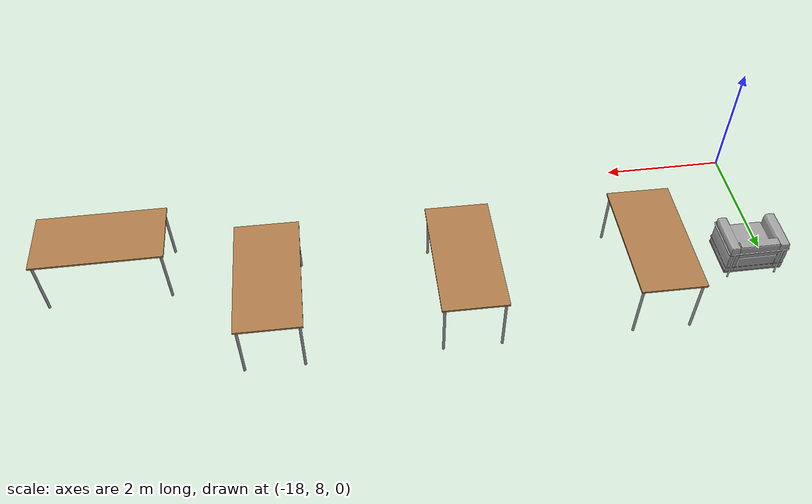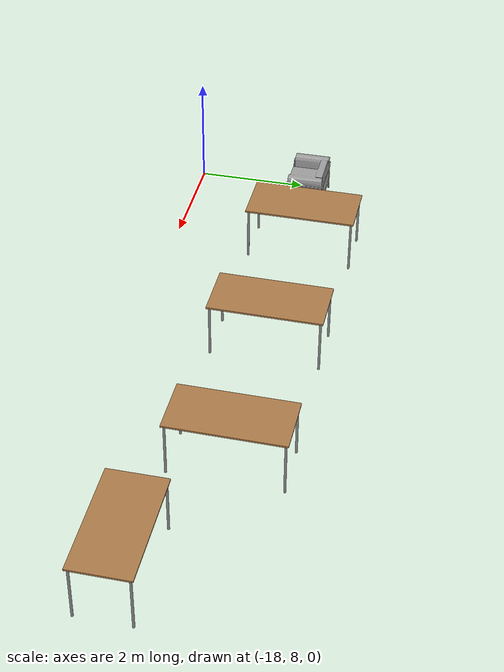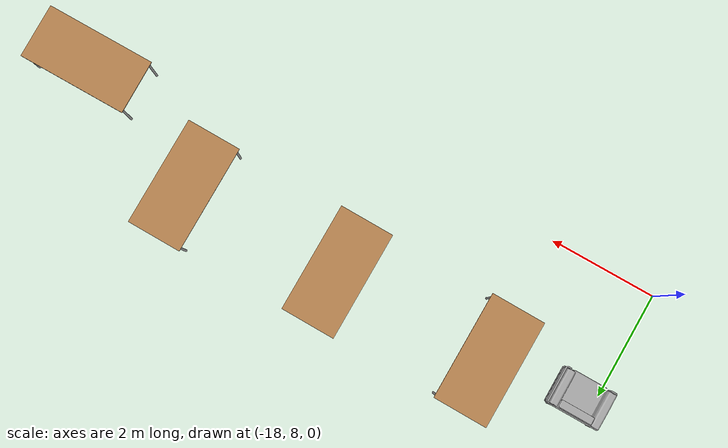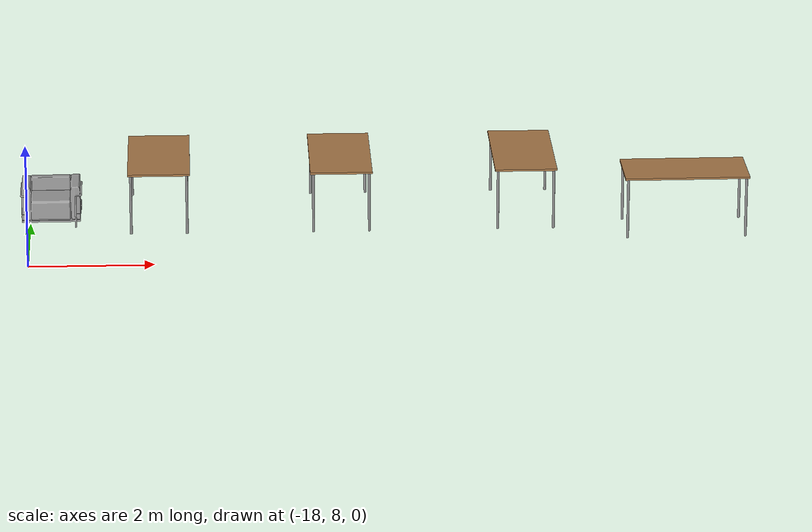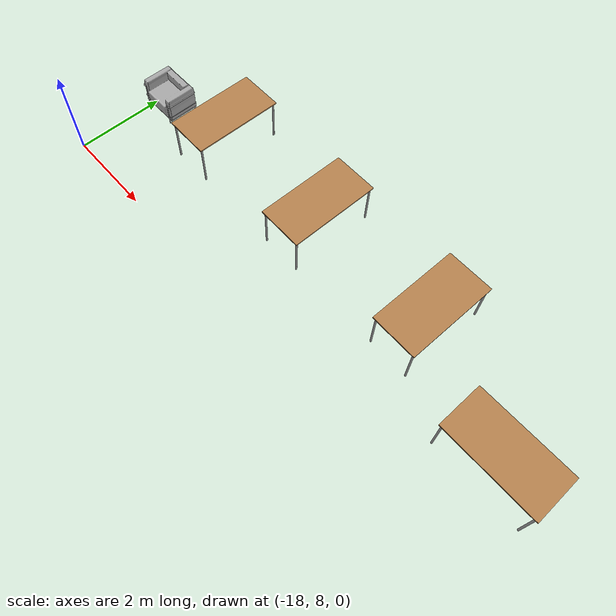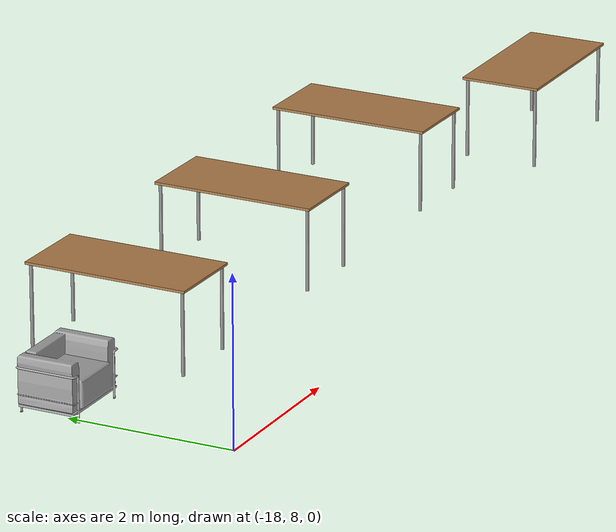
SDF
<sdf version="1.6">
 <model name="bibeg">
  <link name="link_clone_3">
   <pose>-7.46554 9.34004 0 0 -0 0</pose>
   <inertial>
    <mass>1</mass>
    <inertia><ixx>1</ixx><ixy>0</ixy><ixz>0</ixz><iyy>1</iyy><iyz>0</iyz><izz>1</izz></inertia>
   </inertial>
   <visual name="visual1">
    <pose>0 0 1 0 -0 0</pose>
    <geometry><box><size>2 1 0.03</size></box></geometry>
    <material>
     <script><uri>file://media/materials/scripts/gazebo.material</uri><name>Gazebo/Wood</name></script>
     <shader type="vertex"><normal_map>__default__</normal_map></shader>
     <ambient>1 1 1 1</ambient>
     <diffuse>1 1 1 1</diffuse>
     <specular>0.2 0.2 0.2 1</specular>
     <emissive>0 0 0 1</emissive>
    </material>
   </visual>
   <visual name="front_left_leg">
    <pose>0.95 0.45 0.5 0 -0 0</pose>
    <geometry><cylinder><radius>0.02</radius><length>1</length></cylinder></geometry>
    <material>
     <script><uri>file://media/materials/scripts/gazebo.material</uri><name>Gazebo/Grey</name></script>
     <shader type="vertex"><normal_map>__default__</normal_map></shader>
     <ambient>0.3 0.3 0.3 1</ambient>
     <diffuse>0.7 0.7 0.7 1</diffuse>
     <specular>0.01 0.01 0.01 1</specular>
     <emissive>0 0 0 1</emissive>
    </material>
   </visual>
   <visual name="front_right_leg">
    <pose>0.95 -0.45 0.5 0 -0 0</pose>
    <geometry><cylinder><radius>0.02</radius><length>1</length></cylinder></geometry>
    <material>
     <script><uri>file://media/materials/scripts/gazebo.material</uri><name>Gazebo/Grey</name></script>
     <shader type="vertex"><normal_map>__default__</normal_map></shader>
     <ambient>0.3 0.3 0.3 1</ambient>
     <diffuse>0.7 0.7 0.7 1</diffuse>
     <specular>0.01 0.01 0.01 1</specular>
     <emissive>0 0 0 1</emissive>
    </material>
   </visual>
   <visual name="back_right_leg">
    <pose>-0.95 -0.45 0.5 0 -0 0</pose>
    <geometry><cylinder><radius>0.02</radius><length>1</length></cylinder></geometry>
    <material>
     <script><uri>file://media/materials/scripts/gazebo.material</uri><name>Gazebo/Grey</name></script>
     <shader type="vertex"><normal_map>__default__</normal_map></shader>
     <ambient>0.3 0.3 0.3 1</ambient>
     <diffuse>0.7 0.7 0.7 1</diffuse>
     <specular>0.01 0.01 0.01 1</specular>
     <emissive>0 0 0 1</emissive>
    </material>
   </visual>
   <visual name="back_left_leg">
    <pose>-0.95 0.45 0.5 0 -0 0</pose>
    <geometry><cylinder><radius>0.02</radius><length>1</length></cylinder></geometry>
    <material>
     <script><uri>file://media/materials/scripts/gazebo.material</uri><name>Gazebo/Grey</name></script>
     <shader type="vertex"><normal_map>__default__</normal_map></shader>
     <ambient>0.3 0.3 0.3 1</ambient>
     <diffuse>0.7 0.7 0.7 1</diffuse>
     <specular>0.01 0.01 0.01 1</specular>
     <emissive>0 0 0 1</emissive>
    </material>
   </visual>
   <collision name="surface">
    <pose>0 0 1 0 -0 0</pose>
    <geometry><box><size>2 1 0.03</size></box></geometry>
    <surface>
     <friction>
      <ode><mu>1</mu><mu2>1</mu2><fdir1>0 0 0</fdir1><slip1>0</slip1><slip2>0</slip2></ode>
      <torsional>
       <coefficient>1</coefficient>
       <patch_radius>0</patch_radius>
       <surface_radius>0</surface_radius>
       <use_patch_radius>1</use_patch_radius>
       <ode><slip>0</slip></ode>
      </torsional>
     </friction>
     <bounce><restitution_coefficient>0</restitution_coefficient><threshold>1e+06</threshold></bounce>
     <contact>
      <collide_without_contact>0</collide_without_contact>
      <collide_without_contact_bitmask>1</collide_without_contact_bitmask>
      <collide_bitmask>1</collide_bitmask>
      <ode>
       <soft_cfm>0</soft_cfm>
       <soft_erp>0.2</soft_erp>
       <kp>1e+13</kp>
       <kd>1</kd>
       <max_vel>0.01</max_vel>
       <min_depth>0</min_depth>
      </ode>
      <bullet>
       <split_impulse>1</split_impulse>
       <split_impulse_penetration_threshold>-0.01</split_impulse_penetration_threshold>
       <soft_cfm>0</soft_cfm>
       <soft_erp>0.2</soft_erp>
       <kp>1e+13</kp>
       <kd>1</kd>
      </bullet>
     </contact>
    </surface>
   </collision>
   <collision name="front_left_leg_0">
    <pose>0.95 0.45 0.5 0 -0 0</pose>
    <geometry><cylinder><radius>0.02</radius><length>1</length></cylinder></geometry>
    <surface>
     <friction>
      <ode><mu>1</mu><mu2>1</mu2><fdir1>0 0 0</fdir1><slip1>0</slip1><slip2>0</slip2></ode>
      <torsional>
       <coefficient>1</coefficient>
       <patch_radius>0</patch_radius>
       <surface_radius>0</surface_radius>
       <use_patch_radius>1</use_patch_radius>
       <ode><slip>0</slip></ode>
      </torsional>
     </friction>
     <bounce><restitution_coefficient>0</restitution_coefficient><threshold>1e+06</threshold></bounce>
     <contact>
      <collide_without_contact>0</collide_without_contact>
      <collide_without_contact_bitmask>1</collide_without_contact_bitmask>
      <collide_bitmask>1</collide_bitmask>
      <ode>
       <soft_cfm>0</soft_cfm>
       <soft_erp>0.2</soft_erp>
       <kp>1e+13</kp>
       <kd>1</kd>
       <max_vel>0.01</max_vel>
       <min_depth>0</min_depth>
      </ode>
      <bullet>
       <split_impulse>1</split_impulse>
       <split_impulse_penetration_threshold>-0.01</split_impulse_penetration_threshold>
       <soft_cfm>0</soft_cfm>
       <soft_erp>0.2</soft_erp>
       <kp>1e+13</kp>
       <kd>1</kd>
      </bullet>
     </contact>
    </surface>
   </collision>
   <collision name="front_right_leg_0">
    <pose>0.95 -0.45 0.5 0 -0 0</pose>
    <geometry><cylinder><radius>0.02</radius><length>1</length></cylinder></geometry>
    <surface>
     <friction>
      <ode><mu>1</mu><mu2>1</mu2><fdir1>0 0 0</fdir1><slip1>0</slip1><slip2>0</slip2></ode>
      <torsional>
       <coefficient>1</coefficient>
       <patch_radius>0</patch_radius>
       <surface_radius>0</surface_radius>
       <use_patch_radius>1</use_patch_radius>
       <ode><slip>0</slip></ode>
      </torsional>
     </friction>
     <bounce><restitution_coefficient>0</restitution_coefficient><threshold>1e+06</threshold></bounce>
     <contact>
      <collide_without_contact>0</collide_without_contact>
      <collide_without_contact_bitmask>1</collide_without_contact_bitmask>
      <collide_bitmask>1</collide_bitmask>
      <ode>
       <soft_cfm>0</soft_cfm>
       <soft_erp>0.2</soft_erp>
       <kp>1e+13</kp>
       <kd>1</kd>
       <max_vel>0.01</max_vel>
       <min_depth>0</min_depth>
      </ode>
      <bullet>
       <split_impulse>1</split_impulse>
       <split_impulse_penetration_threshold>-0.01</split_impulse_penetration_threshold>
       <soft_cfm>0</soft_cfm>
       <soft_erp>0.2</soft_erp>
       <kp>1e+13</kp>
       <kd>1</kd>
      </bullet>
     </contact>
    </surface>
   </collision>
   <collision name="back_right_leg_0">
    <pose>-0.95 -0.45 0.5 0 -0 0</pose>
    <geometry><cylinder><radius>0.02</radius><length>1</length></cylinder></geometry>
    <surface>
     <friction>
      <ode><mu>1</mu><mu2>1</mu2><fdir1>0 0 0</fdir1><slip1>0</slip1><slip2>0</slip2></ode>
      <torsional>
       <coefficient>1</coefficient>
       <patch_radius>0</patch_radius>
       <surface_radius>0</surface_radius>
       <use_patch_radius>1</use_patch_radius>
       <ode><slip>0</slip></ode>
      </torsional>
     </friction>
     <bounce><restitution_coefficient>0</restitution_coefficient><threshold>1e+06</threshold></bounce>
     <contact>
      <collide_without_contact>0</collide_without_contact>
      <collide_without_contact_bitmask>1</collide_without_contact_bitmask>
      <collide_bitmask>1</collide_bitmask>
      <ode>
       <soft_cfm>0</soft_cfm>
       <soft_erp>0.2</soft_erp>
       <kp>1e+13</kp>
       <kd>1</kd>
       <max_vel>0.01</max_vel>
       <min_depth>0</min_depth>
      </ode>
      <bullet>
       <split_impulse>1</split_impulse>
       <split_impulse_penetration_threshold>-0.01</split_impulse_penetration_threshold>
       <soft_cfm>0</soft_cfm>
       <soft_erp>0.2</soft_erp>
       <kp>1e+13</kp>
       <kd>1</kd>
      </bullet>
     </contact>
    </surface>
   </collision>
   <collision name="back_left_leg_0">
    <pose>-0.68 0.38 0.5 0 -0 0</pose>
    <geometry><cylinder><radius>0.02</radius><length>1</length></cylinder></geometry>
    <surface>
     <friction>
      <ode><mu>1</mu><mu2>1</mu2><fdir1>0 0 0</fdir1><slip1>0</slip1><slip2>0</slip2></ode>
      <torsional>
       <coefficient>1</coefficient>
       <patch_radius>0</patch_radius>
       <surface_radius>0</surface_radius>
       <use_patch_radius>1</use_patch_radius>
       <ode><slip>0</slip></ode>
      </torsional>
     </friction>
     <bounce><restitution_coefficient>0</restitution_coefficient><threshold>1e+06</threshold></bounce>
     <contact>
      <collide_without_contact>0</collide_without_contact>
      <collide_without_contact_bitmask>1</collide_without_contact_bitmask>
      <collide_bitmask>1</collide_bitmask>
      <ode>
       <soft_cfm>0</soft_cfm>
       <soft_erp>0.2</soft_erp>
       <kp>1e+13</kp>
       <kd>1</kd>
       <max_vel>0.01</max_vel>
       <min_depth>0</min_depth>
      </ode>
      <bullet>
       <split_impulse>1</split_impulse>
       <split_impulse_penetration_threshold>-0.01</split_impulse_penetration_threshold>
       <soft_cfm>0</soft_cfm>
       <soft_erp>0.2</soft_erp>
       <kp>1e+13</kp>
       <kd>1</kd>
      </bullet>
     </contact>
    </surface>
   </collision>
  </link>
  <link name="link_clone_4">
   <pose>-10.0063 10.3918 0 0 -0 1.56126</pose>
   <inertial>
    <mass>1</mass>
    <inertia><ixx>1</ixx><ixy>0</ixy><ixz>0</ixz><iyy>1</iyy><iyz>0</iyz><izz>1</izz></inertia>
   </inertial>
   <visual name="visual1">
    <pose>0 0 1 0 -0 0</pose>
    <geometry><box><size>2 1 0.03</size></box></geometry>
    <material>
     <script><uri>file://media/materials/scripts/gazebo.material</uri><name>Gazebo/Wood</name></script>
     <shader type="vertex"><normal_map>__default__</normal_map></shader>
     <ambient>1 1 1 1</ambient>
     <diffuse>1 1 1 1</diffuse>
     <specular>0.2 0.2 0.2 1</specular>
     <emissive>0 0 0 1</emissive>
    </material>
   </visual>
   <visual name="front_left_leg">
    <pose>0.95 0.45 0.5 0 -0 0</pose>
    <geometry><cylinder><radius>0.02</radius><length>1</length></cylinder></geometry>
    <material>
     <script><uri>file://media/materials/scripts/gazebo.material</uri><name>Gazebo/Grey</name></script>
     <shader type="vertex"><normal_map>__default__</normal_map></shader>
     <ambient>0.3 0.3 0.3 1</ambient>
     <diffuse>0.7 0.7 0.7 1</diffuse>
     <specular>0.01 0.01 0.01 1</specular>
     <emissive>0 0 0 1</emissive>
    </material>
   </visual>
   <visual name="front_right_leg">
    <pose>0.95 -0.45 0.5 0 -0 0</pose>
    <geometry><cylinder><radius>0.02</radius><length>1</length></cylinder></geometry>
    <material>
     <script><uri>file://media/materials/scripts/gazebo.material</uri><name>Gazebo/Grey</name></script>
     <shader type="vertex"><normal_map>__default__</normal_map></shader>
     <ambient>0.3 0.3 0.3 1</ambient>
     <diffuse>0.7 0.7 0.7 1</diffuse>
     <specular>0.01 0.01 0.01 1</specular>
     <emissive>0 0 0 1</emissive>
    </material>
   </visual>
   <visual name="back_right_leg">
    <pose>-0.95 -0.45 0.5 0 -0 0</pose>
    <geometry><cylinder><radius>0.02</radius><length>1</length></cylinder></geometry>
    <material>
     <script><uri>file://media/materials/scripts/gazebo.material</uri><name>Gazebo/Grey</name></script>
     <shader type="vertex"><normal_map>__default__</normal_map></shader>
     <ambient>0.3 0.3 0.3 1</ambient>
     <diffuse>0.7 0.7 0.7 1</diffuse>
     <specular>0.01 0.01 0.01 1</specular>
     <emissive>0 0 0 1</emissive>
    </material>
   </visual>
   <visual name="back_left_leg">
    <pose>-0.95 0.45 0.5 0 -0 0</pose>
    <geometry><cylinder><radius>0.02</radius><length>1</length></cylinder></geometry>
    <material>
     <script><uri>file://media/materials/scripts/gazebo.material</uri><name>Gazebo/Grey</name></script>
     <shader type="vertex"><normal_map>__default__</normal_map></shader>
     <ambient>0.3 0.3 0.3 1</ambient>
     <diffuse>0.7 0.7 0.7 1</diffuse>
     <specular>0.01 0.01 0.01 1</specular>
     <emissive>0 0 0 1</emissive>
    </material>
   </visual>
   <collision name="surface">
    <pose>0 0 1 0 -0 0</pose>
    <geometry><box><size>2 1 0.03</size></box></geometry>
    <surface>
     <friction>
      <ode><mu>1</mu><mu2>1</mu2><fdir1>0 0 0</fdir1><slip1>0</slip1><slip2>0</slip2></ode>
      <torsional>
       <coefficient>1</coefficient>
       <patch_radius>0</patch_radius>
       <surface_radius>0</surface_radius>
       <use_patch_radius>1</use_patch_radius>
       <ode><slip>0</slip></ode>
      </torsional>
     </friction>
     <bounce><restitution_coefficient>0</restitution_coefficient><threshold>1e+06</threshold></bounce>
     <contact>
      <collide_without_contact>0</collide_without_contact>
      <collide_without_contact_bitmask>1</collide_without_contact_bitmask>
      <collide_bitmask>1</collide_bitmask>
      <ode>
       <soft_cfm>0</soft_cfm>
       <soft_erp>0.2</soft_erp>
       <kp>1e+13</kp>
       <kd>1</kd>
       <max_vel>0.01</max_vel>
       <min_depth>0</min_depth>
      </ode>
      <bullet>
       <split_impulse>1</split_impulse>
       <split_impulse_penetration_threshold>-0.01</split_impulse_penetration_threshold>
       <soft_cfm>0</soft_cfm>
       <soft_erp>0.2</soft_erp>
       <kp>1e+13</kp>
       <kd>1</kd>
      </bullet>
     </contact>
    </surface>
   </collision>
   <collision name="front_left_leg_0">
    <pose>0.95 0.45 0.5 0 -0 0</pose>
    <geometry><cylinder><radius>0.02</radius><length>1</length></cylinder></geometry>
    <surface>
     <friction>
      <ode><mu>1</mu><mu2>1</mu2><fdir1>0 0 0</fdir1><slip1>0</slip1><slip2>0</slip2></ode>
      <torsional>
       <coefficient>1</coefficient>
       <patch_radius>0</patch_radius>
       <surface_radius>0</surface_radius>
       <use_patch_radius>1</use_patch_radius>
       <ode><slip>0</slip></ode>
      </torsional>
     </friction>
     <bounce><restitution_coefficient>0</restitution_coefficient><threshold>1e+06</threshold></bounce>
     <contact>
      <collide_without_contact>0</collide_without_contact>
      <collide_without_contact_bitmask>1</collide_without_contact_bitmask>
      <collide_bitmask>1</collide_bitmask>
      <ode>
       <soft_cfm>0</soft_cfm>
       <soft_erp>0.2</soft_erp>
       <kp>1e+13</kp>
       <kd>1</kd>
       <max_vel>0.01</max_vel>
       <min_depth>0</min_depth>
      </ode>
      <bullet>
       <split_impulse>1</split_impulse>
       <split_impulse_penetration_threshold>-0.01</split_impulse_penetration_threshold>
       <soft_cfm>0</soft_cfm>
       <soft_erp>0.2</soft_erp>
       <kp>1e+13</kp>
       <kd>1</kd>
      </bullet>
     </contact>
    </surface>
   </collision>
   <collision name="front_right_leg_0">
    <pose>0.95 -0.45 0.5 0 -0 0</pose>
    <geometry><cylinder><radius>0.02</radius><length>1</length></cylinder></geometry>
    <surface>
     <friction>
      <ode><mu>1</mu><mu2>1</mu2><fdir1>0 0 0</fdir1><slip1>0</slip1><slip2>0</slip2></ode>
      <torsional>
       <coefficient>1</coefficient>
       <patch_radius>0</patch_radius>
       <surface_radius>0</surface_radius>
       <use_patch_radius>1</use_patch_radius>
       <ode><slip>0</slip></ode>
      </torsional>
     </friction>
     <bounce><restitution_coefficient>0</restitution_coefficient><threshold>1e+06</threshold></bounce>
     <contact>
      <collide_without_contact>0</collide_without_contact>
      <collide_without_contact_bitmask>1</collide_without_contact_bitmask>
      <collide_bitmask>1</collide_bitmask>
      <ode>
       <soft_cfm>0</soft_cfm>
       <soft_erp>0.2</soft_erp>
       <kp>1e+13</kp>
       <kd>1</kd>
       <max_vel>0.01</max_vel>
       <min_depth>0</min_depth>
      </ode>
      <bullet>
       <split_impulse>1</split_impulse>
       <split_impulse_penetration_threshold>-0.01</split_impulse_penetration_threshold>
       <soft_cfm>0</soft_cfm>
       <soft_erp>0.2</soft_erp>
       <kp>1e+13</kp>
       <kd>1</kd>
      </bullet>
     </contact>
    </surface>
   </collision>
   <collision name="back_right_leg_0">
    <pose>-0.95 -0.45 0.5 0 -0 0</pose>
    <geometry><cylinder><radius>0.02</radius><length>1</length></cylinder></geometry>
    <surface>
     <friction>
      <ode><mu>1</mu><mu2>1</mu2><fdir1>0 0 0</fdir1><slip1>0</slip1><slip2>0</slip2></ode>
      <torsional>
       <coefficient>1</coefficient>
       <patch_radius>0</patch_radius>
       <surface_radius>0</surface_radius>
       <use_patch_radius>1</use_patch_radius>
       <ode><slip>0</slip></ode>
      </torsional>
     </friction>
     <bounce><restitution_coefficient>0</restitution_coefficient><threshold>1e+06</threshold></bounce>
     <contact>
      <collide_without_contact>0</collide_without_contact>
      <collide_without_contact_bitmask>1</collide_without_contact_bitmask>
      <collide_bitmask>1</collide_bitmask>
      <ode>
       <soft_cfm>0</soft_cfm>
       <soft_erp>0.2</soft_erp>
       <kp>1e+13</kp>
       <kd>1</kd>
       <max_vel>0.01</max_vel>
       <min_depth>0</min_depth>
      </ode>
      <bullet>
       <split_impulse>1</split_impulse>
       <split_impulse_penetration_threshold>-0.01</split_impulse_penetration_threshold>
       <soft_cfm>0</soft_cfm>
       <soft_erp>0.2</soft_erp>
       <kp>1e+13</kp>
       <kd>1</kd>
      </bullet>
     </contact>
    </surface>
   </collision>
   <collision name="back_left_leg_0">
    <pose>-0.68 0.38 0.5 0 -0 0</pose>
    <geometry><cylinder><radius>0.02</radius><length>1</length></cylinder></geometry>
    <surface>
     <friction>
      <ode><mu>1</mu><mu2>1</mu2><fdir1>0 0 0</fdir1><slip1>0</slip1><slip2>0</slip2></ode>
      <torsional>
       <coefficient>1</coefficient>
       <patch_radius>0</patch_radius>
       <surface_radius>0</surface_radius>
       <use_patch_radius>1</use_patch_radius>
       <ode><slip>0</slip></ode>
      </torsional>
     </friction>
     <bounce><restitution_coefficient>0</restitution_coefficient><threshold>1e+06</threshold></bounce>
     <contact>
      <collide_without_contact>0</collide_without_contact>
      <collide_without_contact_bitmask>1</collide_without_contact_bitmask>
      <collide_bitmask>1</collide_bitmask>
      <ode>
       <soft_cfm>0</soft_cfm>
       <soft_erp>0.2</soft_erp>
       <kp>1e+13</kp>
       <kd>1</kd>
       <max_vel>0.01</max_vel>
       <min_depth>0</min_depth>
      </ode>
      <bullet>
       <split_impulse>1</split_impulse>
       <split_impulse_penetration_threshold>-0.01</split_impulse_penetration_threshold>
       <soft_cfm>0</soft_cfm>
       <soft_erp>0.2</soft_erp>
       <kp>1e+13</kp>
       <kd>1</kd>
      </bullet>
     </contact>
    </surface>
   </collision>
  </link>
  <link name="link_clone_5">
   <pose>-12.9824 10.3871 0 0 -0 1.56126</pose>
   <inertial>
    <mass>1</mass>
    <inertia><ixx>1</ixx><ixy>0</ixy><ixz>0</ixz><iyy>1</iyy><iyz>0</iyz><izz>1</izz></inertia>
   </inertial>
   <visual name="visual1">
    <pose>0 0 1 0 -0 0</pose>
    <geometry><box><size>2 1 0.03</size></box></geometry>
    <material>
     <script><uri>file://media/materials/scripts/gazebo.material</uri><name>Gazebo/Wood</name></script>
     <shader type="vertex"><normal_map>__default__</normal_map></shader>
     <ambient>1 1 1 1</ambient>
     <diffuse>1 1 1 1</diffuse>
     <specular>0.2 0.2 0.2 1</specular>
     <emissive>0 0 0 1</emissive>
    </material>
   </visual>
   <visual name="front_left_leg">
    <pose>0.95 0.45 0.5 0 -0 0</pose>
    <geometry><cylinder><radius>0.02</radius><length>1</length></cylinder></geometry>
    <material>
     <script><uri>file://media/materials/scripts/gazebo.material</uri><name>Gazebo/Grey</name></script>
     <shader type="vertex"><normal_map>__default__</normal_map></shader>
     <ambient>0.3 0.3 0.3 1</ambient>
     <diffuse>0.7 0.7 0.7 1</diffuse>
     <specular>0.01 0.01 0.01 1</specular>
     <emissive>0 0 0 1</emissive>
    </material>
   </visual>
   <visual name="front_right_leg">
    <pose>0.95 -0.45 0.5 0 -0 0</pose>
    <geometry><cylinder><radius>0.02</radius><length>1</length></cylinder></geometry>
    <material>
     <script><uri>file://media/materials/scripts/gazebo.material</uri><name>Gazebo/Grey</name></script>
     <shader type="vertex"><normal_map>__default__</normal_map></shader>
     <ambient>0.3 0.3 0.3 1</ambient>
     <diffuse>0.7 0.7 0.7 1</diffuse>
     <specular>0.01 0.01 0.01 1</specular>
     <emissive>0 0 0 1</emissive>
    </material>
   </visual>
   <visual name="back_right_leg">
    <pose>-0.95 -0.45 0.5 0 -0 0</pose>
    <geometry><cylinder><radius>0.02</radius><length>1</length></cylinder></geometry>
    <material>
     <script><uri>file://media/materials/scripts/gazebo.material</uri><name>Gazebo/Grey</name></script>
     <shader type="vertex"><normal_map>__default__</normal_map></shader>
     <ambient>0.3 0.3 0.3 1</ambient>
     <diffuse>0.7 0.7 0.7 1</diffuse>
     <specular>0.01 0.01 0.01 1</specular>
     <emissive>0 0 0 1</emissive>
    </material>
   </visual>
   <visual name="back_left_leg">
    <pose>-0.95 0.45 0.5 0 -0 0</pose>
    <geometry><cylinder><radius>0.02</radius><length>1</length></cylinder></geometry>
    <material>
     <script><uri>file://media/materials/scripts/gazebo.material</uri><name>Gazebo/Grey</name></script>
     <shader type="vertex"><normal_map>__default__</normal_map></shader>
     <ambient>0.3 0.3 0.3 1</ambient>
     <diffuse>0.7 0.7 0.7 1</diffuse>
     <specular>0.01 0.01 0.01 1</specular>
     <emissive>0 0 0 1</emissive>
    </material>
   </visual>
   <collision name="surface">
    <pose>0 0 1 0 -0 0</pose>
    <geometry><box><size>2 1 0.03</size></box></geometry>
    <surface>
     <friction>
      <ode><mu>1</mu><mu2>1</mu2><fdir1>0 0 0</fdir1><slip1>0</slip1><slip2>0</slip2></ode>
      <torsional>
       <coefficient>1</coefficient>
       <patch_radius>0</patch_radius>
       <surface_radius>0</surface_radius>
       <use_patch_radius>1</use_patch_radius>
       <ode><slip>0</slip></ode>
      </torsional>
     </friction>
     <bounce><restitution_coefficient>0</restitution_coefficient><threshold>1e+06</threshold></bounce>
     <contact>
      <collide_without_contact>0</collide_without_contact>
      <collide_without_contact_bitmask>1</collide_without_contact_bitmask>
      <collide_bitmask>1</collide_bitmask>
      <ode>
       <soft_cfm>0</soft_cfm>
       <soft_erp>0.2</soft_erp>
       <kp>1e+13</kp>
       <kd>1</kd>
       <max_vel>0.01</max_vel>
       <min_depth>0</min_depth>
      </ode>
      <bullet>
       <split_impulse>1</split_impulse>
       <split_impulse_penetration_threshold>-0.01</split_impulse_penetration_threshold>
       <soft_cfm>0</soft_cfm>
       <soft_erp>0.2</soft_erp>
       <kp>1e+13</kp>
       <kd>1</kd>
      </bullet>
     </contact>
    </surface>
   </collision>
   <collision name="front_left_leg_0">
    <pose>0.95 0.45 0.5 0 -0 0</pose>
    <geometry><cylinder><radius>0.02</radius><length>1</length></cylinder></geometry>
    <surface>
     <friction>
      <ode><mu>1</mu><mu2>1</mu2><fdir1>0 0 0</fdir1><slip1>0</slip1><slip2>0</slip2></ode>
      <torsional>
       <coefficient>1</coefficient>
       <patch_radius>0</patch_radius>
       <surface_radius>0</surface_radius>
       <use_patch_radius>1</use_patch_radius>
       <ode><slip>0</slip></ode>
      </torsional>
     </friction>
     <bounce><restitution_coefficient>0</restitution_coefficient><threshold>1e+06</threshold></bounce>
     <contact>
      <collide_without_contact>0</collide_without_contact>
      <collide_without_contact_bitmask>1</collide_without_contact_bitmask>
      <collide_bitmask>1</collide_bitmask>
      <ode>
       <soft_cfm>0</soft_cfm>
       <soft_erp>0.2</soft_erp>
       <kp>1e+13</kp>
       <kd>1</kd>
       <max_vel>0.01</max_vel>
       <min_depth>0</min_depth>
      </ode>
      <bullet>
       <split_impulse>1</split_impulse>
       <split_impulse_penetration_threshold>-0.01</split_impulse_penetration_threshold>
       <soft_cfm>0</soft_cfm>
       <soft_erp>0.2</soft_erp>
       <kp>1e+13</kp>
       <kd>1</kd>
      </bullet>
     </contact>
    </surface>
   </collision>
   <collision name="front_right_leg_0">
    <pose>0.95 -0.45 0.5 0 -0 0</pose>
    <geometry><cylinder><radius>0.02</radius><length>1</length></cylinder></geometry>
    <surface>
     <friction>
      <ode><mu>1</mu><mu2>1</mu2><fdir1>0 0 0</fdir1><slip1>0</slip1><slip2>0</slip2></ode>
      <torsional>
       <coefficient>1</coefficient>
       <patch_radius>0</patch_radius>
       <surface_radius>0</surface_radius>
       <use_patch_radius>1</use_patch_radius>
       <ode><slip>0</slip></ode>
      </torsional>
     </friction>
     <bounce><restitution_coefficient>0</restitution_coefficient><threshold>1e+06</threshold></bounce>
     <contact>
      <collide_without_contact>0</collide_without_contact>
      <collide_without_contact_bitmask>1</collide_without_contact_bitmask>
      <collide_bitmask>1</collide_bitmask>
      <ode>
       <soft_cfm>0</soft_cfm>
       <soft_erp>0.2</soft_erp>
       <kp>1e+13</kp>
       <kd>1</kd>
       <max_vel>0.01</max_vel>
       <min_depth>0</min_depth>
      </ode>
      <bullet>
       <split_impulse>1</split_impulse>
       <split_impulse_penetration_threshold>-0.01</split_impulse_penetration_threshold>
       <soft_cfm>0</soft_cfm>
       <soft_erp>0.2</soft_erp>
       <kp>1e+13</kp>
       <kd>1</kd>
      </bullet>
     </contact>
    </surface>
   </collision>
   <collision name="back_right_leg_0">
    <pose>-0.95 -0.45 0.5 0 -0 0</pose>
    <geometry><cylinder><radius>0.02</radius><length>1</length></cylinder></geometry>
    <surface>
     <friction>
      <ode><mu>1</mu><mu2>1</mu2><fdir1>0 0 0</fdir1><slip1>0</slip1><slip2>0</slip2></ode>
      <torsional>
       <coefficient>1</coefficient>
       <patch_radius>0</patch_radius>
       <surface_radius>0</surface_radius>
       <use_patch_radius>1</use_patch_radius>
       <ode><slip>0</slip></ode>
      </torsional>
     </friction>
     <bounce><restitution_coefficient>0</restitution_coefficient><threshold>1e+06</threshold></bounce>
     <contact>
      <collide_without_contact>0</collide_without_contact>
      <collide_without_contact_bitmask>1</collide_without_contact_bitmask>
      <collide_bitmask>1</collide_bitmask>
      <ode>
       <soft_cfm>0</soft_cfm>
       <soft_erp>0.2</soft_erp>
       <kp>1e+13</kp>
       <kd>1</kd>
       <max_vel>0.01</max_vel>
       <min_depth>0</min_depth>
      </ode>
      <bullet>
       <split_impulse>1</split_impulse>
       <split_impulse_penetration_threshold>-0.01</split_impulse_penetration_threshold>
       <soft_cfm>0</soft_cfm>
       <soft_erp>0.2</soft_erp>
       <kp>1e+13</kp>
       <kd>1</kd>
      </bullet>
     </contact>
    </surface>
   </collision>
   <collision name="back_left_leg_0">
    <pose>-0.68 0.38 0.5 0 -0 0</pose>
    <geometry><cylinder><radius>0.02</radius><length>1</length></cylinder></geometry>
    <surface>
     <friction>
      <ode><mu>1</mu><mu2>1</mu2><fdir1>0 0 0</fdir1><slip1>0</slip1><slip2>0</slip2></ode>
      <torsional>
       <coefficient>1</coefficient>
       <patch_radius>0</patch_radius>
       <surface_radius>0</surface_radius>
       <use_patch_radius>1</use_patch_radius>
       <ode><slip>0</slip></ode>
      </torsional>
     </friction>
     <bounce><restitution_coefficient>0</restitution_coefficient><threshold>1e+06</threshold></bounce>
     <contact>
      <collide_without_contact>0</collide_without_contact>
      <collide_without_contact_bitmask>1</collide_without_contact_bitmask>
      <collide_bitmask>1</collide_bitmask>
      <ode>
       <soft_cfm>0</soft_cfm>
       <soft_erp>0.2</soft_erp>
       <kp>1e+13</kp>
       <kd>1</kd>
       <max_vel>0.01</max_vel>
       <min_depth>0</min_depth>
      </ode>
      <bullet>
       <split_impulse>1</split_impulse>
       <split_impulse_penetration_threshold>-0.01</split_impulse_penetration_threshold>
       <soft_cfm>0</soft_cfm>
       <soft_erp>0.2</soft_erp>
       <kp>1e+13</kp>
       <kd>1</kd>
      </bullet>
     </contact>
    </surface>
   </collision>
  </link>
  <link name="link_clone_6">
   <pose>-15.9157 10.4208 0 0 -0 1.56126</pose>
   <inertial>
    <mass>1</mass>
    <inertia><ixx>1</ixx><ixy>0</ixy><ixz>0</ixz><iyy>1</iyy><iyz>0</iyz><izz>1</izz></inertia>
   </inertial>
   <visual name="visual1">
    <pose>0 0 1 0 -0 0</pose>
    <geometry><box><size>2 1 0.03</size></box></geometry>
    <material>
     <script><uri>file://media/materials/scripts/gazebo.material</uri><name>Gazebo/Wood</name></script>
     <shader type="vertex"><normal_map>__default__</normal_map></shader>
     <ambient>1 1 1 1</ambient>
     <diffuse>1 1 1 1</diffuse>
     <specular>0.2 0.2 0.2 1</specular>
     <emissive>0 0 0 1</emissive>
    </material>
   </visual>
   <visual name="front_left_leg">
    <pose>0.95 0.45 0.5 0 -0 0</pose>
    <geometry><cylinder><radius>0.02</radius><length>1</length></cylinder></geometry>
    <material>
     <script><uri>file://media/materials/scripts/gazebo.material</uri><name>Gazebo/Grey</name></script>
     <shader type="vertex"><normal_map>__default__</normal_map></shader>
     <ambient>0.3 0.3 0.3 1</ambient>
     <diffuse>0.7 0.7 0.7 1</diffuse>
     <specular>0.01 0.01 0.01 1</specular>
     <emissive>0 0 0 1</emissive>
    </material>
   </visual>
   <visual name="front_right_leg">
    <pose>0.95 -0.45 0.5 0 -0 0</pose>
    <geometry><cylinder><radius>0.02</radius><length>1</length></cylinder></geometry>
    <material>
     <script><uri>file://media/materials/scripts/gazebo.material</uri><name>Gazebo/Grey</name></script>
     <shader type="vertex"><normal_map>__default__</normal_map></shader>
     <ambient>0.3 0.3 0.3 1</ambient>
     <diffuse>0.7 0.7 0.7 1</diffuse>
     <specular>0.01 0.01 0.01 1</specular>
     <emissive>0 0 0 1</emissive>
    </material>
   </visual>
   <visual name="back_right_leg">
    <pose>-0.95 -0.45 0.5 0 -0 0</pose>
    <geometry><cylinder><radius>0.02</radius><length>1</length></cylinder></geometry>
    <material>
     <script><uri>file://media/materials/scripts/gazebo.material</uri><name>Gazebo/Grey</name></script>
     <shader type="vertex"><normal_map>__default__</normal_map></shader>
     <ambient>0.3 0.3 0.3 1</ambient>
     <diffuse>0.7 0.7 0.7 1</diffuse>
     <specular>0.01 0.01 0.01 1</specular>
     <emissive>0 0 0 1</emissive>
    </material>
   </visual>
   <visual name="back_left_leg">
    <pose>-0.95 0.45 0.5 0 -0 0</pose>
    <geometry><cylinder><radius>0.02</radius><length>1</length></cylinder></geometry>
    <material>
     <script><uri>file://media/materials/scripts/gazebo.material</uri><name>Gazebo/Grey</name></script>
     <shader type="vertex"><normal_map>__default__</normal_map></shader>
     <ambient>0.3 0.3 0.3 1</ambient>
     <diffuse>0.7 0.7 0.7 1</diffuse>
     <specular>0.01 0.01 0.01 1</specular>
     <emissive>0 0 0 1</emissive>
    </material>
   </visual>
   <collision name="surface">
    <pose>0 0 1 0 -0 0</pose>
    <geometry><box><size>2 1 0.03</size></box></geometry>
    <surface>
     <friction>
      <ode><mu>1</mu><mu2>1</mu2><fdir1>0 0 0</fdir1><slip1>0</slip1><slip2>0</slip2></ode>
      <torsional>
       <coefficient>1</coefficient>
       <patch_radius>0</patch_radius>
       <surface_radius>0</surface_radius>
       <use_patch_radius>1</use_patch_radius>
       <ode><slip>0</slip></ode>
      </torsional>
     </friction>
     <bounce><restitution_coefficient>0</restitution_coefficient><threshold>1e+06</threshold></bounce>
     <contact>
      <collide_without_contact>0</collide_without_contact>
      <collide_without_contact_bitmask>1</collide_without_contact_bitmask>
      <collide_bitmask>1</collide_bitmask>
      <ode>
       <soft_cfm>0</soft_cfm>
       <soft_erp>0.2</soft_erp>
       <kp>1e+13</kp>
       <kd>1</kd>
       <max_vel>0.01</max_vel>
       <min_depth>0</min_depth>
      </ode>
      <bullet>
       <split_impulse>1</split_impulse>
       <split_impulse_penetration_threshold>-0.01</split_impulse_penetration_threshold>
       <soft_cfm>0</soft_cfm>
       <soft_erp>0.2</soft_erp>
       <kp>1e+13</kp>
       <kd>1</kd>
      </bullet>
     </contact>
    </surface>
   </collision>
   <collision name="front_left_leg_0">
    <pose>0.95 0.45 0.5 0 -0 0</pose>
    <geometry><cylinder><radius>0.02</radius><length>1</length></cylinder></geometry>
    <surface>
     <friction>
      <ode><mu>1</mu><mu2>1</mu2><fdir1>0 0 0</fdir1><slip1>0</slip1><slip2>0</slip2></ode>
      <torsional>
       <coefficient>1</coefficient>
       <patch_radius>0</patch_radius>
       <surface_radius>0</surface_radius>
       <use_patch_radius>1</use_patch_radius>
       <ode><slip>0</slip></ode>
      </torsional>
     </friction>
     <bounce><restitution_coefficient>0</restitution_coefficient><threshold>1e+06</threshold></bounce>
     <contact>
      <collide_without_contact>0</collide_without_contact>
      <collide_without_contact_bitmask>1</collide_without_contact_bitmask>
      <collide_bitmask>1</collide_bitmask>
      <ode>
       <soft_cfm>0</soft_cfm>
       <soft_erp>0.2</soft_erp>
       <kp>1e+13</kp>
       <kd>1</kd>
       <max_vel>0.01</max_vel>
       <min_depth>0</min_depth>
      </ode>
      <bullet>
       <split_impulse>1</split_impulse>
       <split_impulse_penetration_threshold>-0.01</split_impulse_penetration_threshold>
       <soft_cfm>0</soft_cfm>
       <soft_erp>0.2</soft_erp>
       <kp>1e+13</kp>
       <kd>1</kd>
      </bullet>
     </contact>
    </surface>
   </collision>
   <collision name="front_right_leg_0">
    <pose>0.95 -0.45 0.5 0 -0 0</pose>
    <geometry><cylinder><radius>0.02</radius><length>1</length></cylinder></geometry>
    <surface>
     <friction>
      <ode><mu>1</mu><mu2>1</mu2><fdir1>0 0 0</fdir1><slip1>0</slip1><slip2>0</slip2></ode>
      <torsional>
       <coefficient>1</coefficient>
       <patch_radius>0</patch_radius>
       <surface_radius>0</surface_radius>
       <use_patch_radius>1</use_patch_radius>
       <ode><slip>0</slip></ode>
      </torsional>
     </friction>
     <bounce><restitution_coefficient>0</restitution_coefficient><threshold>1e+06</threshold></bounce>
     <contact>
      <collide_without_contact>0</collide_without_contact>
      <collide_without_contact_bitmask>1</collide_without_contact_bitmask>
      <collide_bitmask>1</collide_bitmask>
      <ode>
       <soft_cfm>0</soft_cfm>
       <soft_erp>0.2</soft_erp>
       <kp>1e+13</kp>
       <kd>1</kd>
       <max_vel>0.01</max_vel>
       <min_depth>0</min_depth>
      </ode>
      <bullet>
       <split_impulse>1</split_impulse>
       <split_impulse_penetration_threshold>-0.01</split_impulse_penetration_threshold>
       <soft_cfm>0</soft_cfm>
       <soft_erp>0.2</soft_erp>
       <kp>1e+13</kp>
       <kd>1</kd>
      </bullet>
     </contact>
    </surface>
   </collision>
   <collision name="back_right_leg_0">
    <pose>-0.95 -0.45 0.5 0 -0 0</pose>
    <geometry><cylinder><radius>0.02</radius><length>1</length></cylinder></geometry>
    <surface>
     <friction>
      <ode><mu>1</mu><mu2>1</mu2><fdir1>0 0 0</fdir1><slip1>0</slip1><slip2>0</slip2></ode>
      <torsional>
       <coefficient>1</coefficient>
       <patch_radius>0</patch_radius>
       <surface_radius>0</surface_radius>
       <use_patch_radius>1</use_patch_radius>
       <ode><slip>0</slip></ode>
      </torsional>
     </friction>
     <bounce><restitution_coefficient>0</restitution_coefficient><threshold>1e+06</threshold></bounce>
     <contact>
      <collide_without_contact>0</collide_without_contact>
      <collide_without_contact_bitmask>1</collide_without_contact_bitmask>
      <collide_bitmask>1</collide_bitmask>
      <ode>
       <soft_cfm>0</soft_cfm>
       <soft_erp>0.2</soft_erp>
       <kp>1e+13</kp>
       <kd>1</kd>
       <max_vel>0.01</max_vel>
       <min_depth>0</min_depth>
      </ode>
      <bullet>
       <split_impulse>1</split_impulse>
       <split_impulse_penetration_threshold>-0.01</split_impulse_penetration_threshold>
       <soft_cfm>0</soft_cfm>
       <soft_erp>0.2</soft_erp>
       <kp>1e+13</kp>
       <kd>1</kd>
      </bullet>
     </contact>
    </surface>
   </collision>
   <collision name="back_left_leg_0">
    <pose>-0.68 0.38 0.5 0 -0 0</pose>
    <geometry><cylinder><radius>0.02</radius><length>1</length></cylinder></geometry>
    <surface>
     <friction>
      <ode><mu>1</mu><mu2>1</mu2><fdir1>0 0 0</fdir1><slip1>0</slip1><slip2>0</slip2></ode>
      <torsional>
       <coefficient>1</coefficient>
       <patch_radius>0</patch_radius>
       <surface_radius>0</surface_radius>
       <use_patch_radius>1</use_patch_radius>
       <ode><slip>0</slip></ode>
      </torsional>
     </friction>
     <bounce><restitution_coefficient>0</restitution_coefficient><threshold>1e+06</threshold></bounce>
     <contact>
      <collide_without_contact>0</collide_without_contact>
      <collide_without_contact_bitmask>1</collide_without_contact_bitmask>
      <collide_bitmask>1</collide_bitmask>
      <ode>
       <soft_cfm>0</soft_cfm>
       <soft_erp>0.2</soft_erp>
       <kp>1e+13</kp>
       <kd>1</kd>
       <max_vel>0.01</max_vel>
       <min_depth>0</min_depth>
      </ode>
      <bullet>
       <split_impulse>1</split_impulse>
       <split_impulse_penetration_threshold>-0.01</split_impulse_penetration_threshold>
       <soft_cfm>0</soft_cfm>
       <soft_erp>0.2</soft_erp>
       <kp>1e+13</kp>
       <kd>1</kd>
      </bullet>
     </contact>
    </surface>
   </collision>
  </link>
  <model name="chair_set_1_0">
   <link name="link_16">
    <pose>0.07217 0.114259 -0.032065 0 -0 1.57</pose>
    <visual name="visual">
     <geometry><mesh><uri>model://chair_set_1/meshes/chair_frame.dae</uri><scale>1 1 1</scale></mesh></geometry>
     <material>
      <lighting>1</lighting>
      <ambient>0.3 0.3 0.3 1</ambient>
      <diffuse>0.7 0.7 0.7 1</diffuse>
      <specular>0.01 0.01 0.01 1</specular>
      <emissive>0 0 0 1</emissive>
      <shader type="vertex"><normal_map>__default__</normal_map></shader>
     </material>
    </visual>
    <collision name="collision">
     <geometry><mesh><uri>model://chair_set_1/meshes/chair_frame.dae</uri><scale>1 1 1</scale></mesh></geometry>
    </collision>
   </link>
   <link name="link_17">
    <pose>0.069192 0.1237 -0.032065 0 -0 1.57</pose>
    <visual name="visual">
     <geometry><mesh><uri>model://chair_set_1/meshes/chair_cushions.dae</uri><scale>1 1 1</scale></mesh></geometry>
     <material>
      <script>
       <uri>model://chair_set_1/materials/scripts</uri>
       <uri>model://chair_set_1/materials/textures</uri>
       <name>chair_set_1</name>
      </script>
     </material>
    </visual>
    <collision name="collision">
     <geometry><mesh><uri>model://chair_set_1/meshes/chair_cushions.dae</uri><scale>1 1 1</scale></mesh></geometry>
    </collision>
   </link>
   <link name="link_18">
    <pose>0.606963 -0.367766 -0.032065 0 -0 0</pose>
    <visual name="visual">
     <geometry>
      <mesh><uri>model://chair_set_1/meshes/sofa_cushions_back.dae</uri><scale>1 1 1</scale></mesh>
     </geometry>
     <material>
      <script>
       <uri>model://chair_set_1/materials/scripts</uri>
       <uri>model://chair_set_1/materials/textures</uri>
       <name>chair_set_1</name>
      </script>
     </material>
    </visual>
    <collision name="collision">
     <geometry>
      <mesh><uri>model://chair_set_1/meshes/sofa_cushions_back.dae</uri><scale>1 1 1</scale></mesh>
     </geometry>
    </collision>
   </link>
   <static>1</static>
   <pose>-17.6572 10.1964 0 0 -0 0</pose>
  </model>
  <static>1</static>
 </model>
</sdf>
